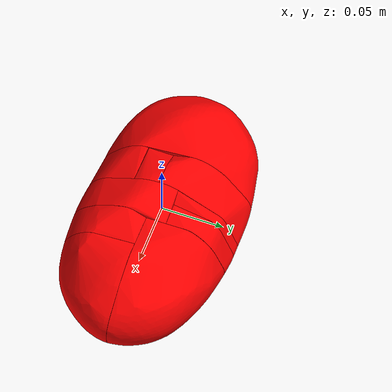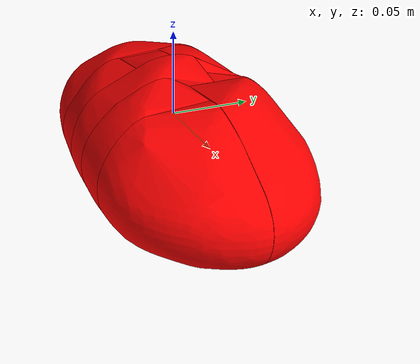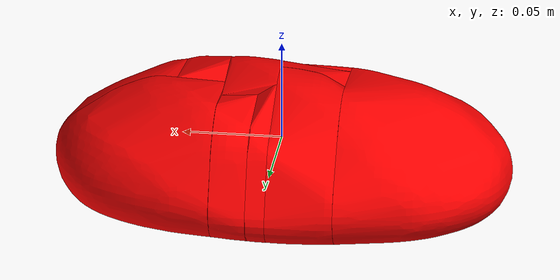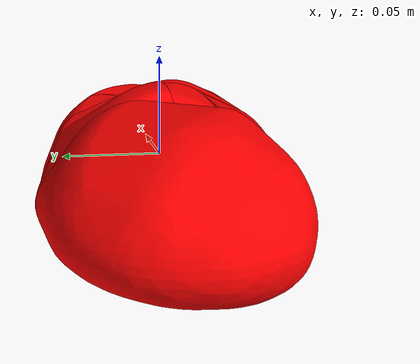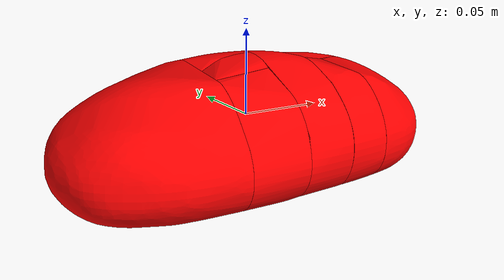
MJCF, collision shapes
<?xml version="1.0" ?>
<mujoco model="bread_roll_2">
	<compiler meshdir="bread_roll_2/meshes" texturedir="bread_roll_2/textures" angle="radian" autolimits="true" balanceinertia="true" boundmass="0.000001" boundinertia="0.000001"/>
	<default>
		<default class="visual">
			<geom contype="0" conaffinity="0"/>
		</default>
		<default class="collision">
			<geom rgba="1.0 0.0 0.0 0.0"/>
		</default>
	</default>
	<asset>
		<mesh name="BreadRoll2" file="obj/BreadRoll2.obj" scale="1.0 1.0 1.0"/>
		<mesh name="BreadRoll2_001" file="stl/BreadRoll2_001.stl" scale="1.0 1.0 1.0"/>
		<mesh name="BreadRoll2_002" file="stl/BreadRoll2_002.stl" scale="1.0 1.0 1.0"/>
		<mesh name="BreadRoll2_003" file="stl/BreadRoll2_003.stl" scale="1.0 1.0 1.0"/>
		<mesh name="BreadRoll2_004" file="stl/BreadRoll2_004.stl" scale="1.0 1.0 1.0"/>
		<mesh name="BreadRoll2_005" file="stl/BreadRoll2_005.stl" scale="1.0 1.0 1.0"/>
		<mesh name="BreadRoll2_006" file="stl/BreadRoll2_006.stl" scale="1.0 1.0 1.0"/>
		<mesh name="BreadRoll2_007" file="stl/BreadRoll2_007.stl" scale="1.0 1.0 1.0"/>
		<mesh name="BreadRoll2_008" file="stl/BreadRoll2_008.stl" scale="1.0 1.0 1.0"/>
		<mesh name="BreadRoll2_009" file="stl/BreadRoll2_009.stl" scale="1.0 1.0 1.0"/>
		<mesh name="BreadRoll2_010" file="stl/BreadRoll2_010.stl" scale="1.0 1.0 1.0"/>
		<material name="M_BreadRoll2" texture="T_BreadRoll2"/>
		<texture name="T_BreadRoll2" type="2d" file="T_BreadRoll2.png"/>
	</asset>
	<worldbody>
		<body name="bread_roll_2" pos="0.0 0.0 0.0" quat="1.0 0.0 0.0 0.0">
			<inertial mass="0.2732691466808319" pos="-0.0008767000399529934 -0.0015069007640704513 -0.006712085567414761" quat="0.9999000430107117 0.00406298553571105 -0.004035430494695902 -0.012925411574542522" diaginertia="0.0003073183761443943 0.0008927086018957198 0.0010414434364065528"/>
			<geom name="BreadRoll2" type="mesh" pos="0.0 0.0 0.0" quat="1.0 0.0 0.0 0.0" mesh="BreadRoll2" material="M_BreadRoll2" class="visual"/>
			<geom name="BreadRoll2_001" type="mesh" pos="0.0 0.0 0.0" quat="1.0 0.0 0.0 0.0" mesh="BreadRoll2_001" class="collision"/>
			<geom name="BreadRoll2_002" type="mesh" pos="0.0 0.0 0.0" quat="1.0 0.0 0.0 0.0" mesh="BreadRoll2_002" class="collision"/>
			<geom name="BreadRoll2_003" type="mesh" pos="0.0 0.0 0.0" quat="1.0 0.0 0.0 0.0" mesh="BreadRoll2_003" class="collision"/>
			<geom name="BreadRoll2_004" type="mesh" pos="0.0 0.0 0.0" quat="1.0 0.0 0.0 0.0" mesh="BreadRoll2_004" class="collision"/>
			<geom name="BreadRoll2_005" type="mesh" pos="0.0 0.0 0.0" quat="1.0 0.0 0.0 0.0" mesh="BreadRoll2_005" class="collision"/>
			<geom name="BreadRoll2_006" type="mesh" pos="0.0 0.0 0.0" quat="1.0 0.0 0.0 0.0" mesh="BreadRoll2_006" class="collision"/>
			<geom name="BreadRoll2_007" type="mesh" pos="0.0 0.0 0.0" quat="1.0 0.0 0.0 0.0" mesh="BreadRoll2_007" class="collision"/>
			<geom name="BreadRoll2_008" type="mesh" pos="0.0 0.0 0.0" quat="1.0 0.0 0.0 0.0" mesh="BreadRoll2_008" class="collision"/>
			<geom name="BreadRoll2_009" type="mesh" pos="0.0 0.0 0.0" quat="1.0 0.0 0.0 0.0" mesh="BreadRoll2_009" class="collision"/>
			<geom name="BreadRoll2_010" type="mesh" pos="0.0 0.0 0.0" quat="1.0 0.0 0.0 0.0" mesh="BreadRoll2_010" class="collision"/>
		</body>
	</worldbody>
	<equality/>
</mujoco>
